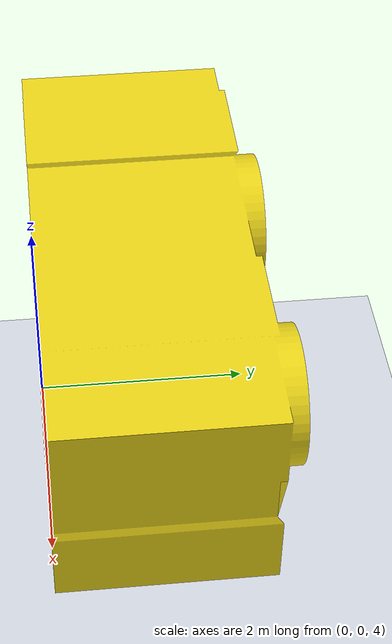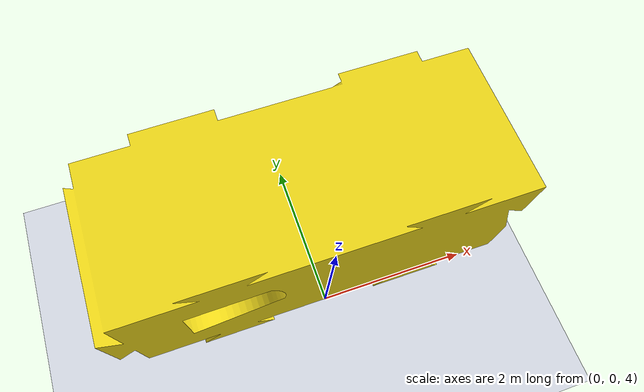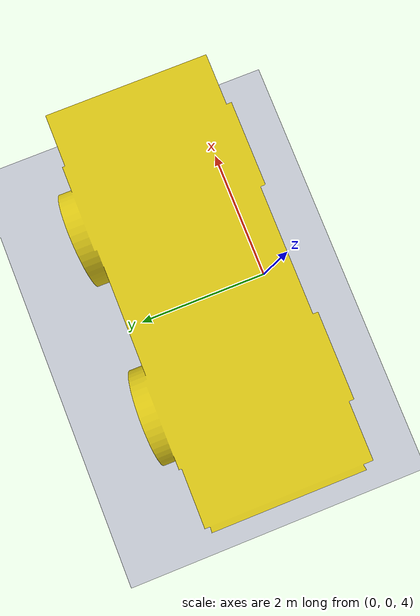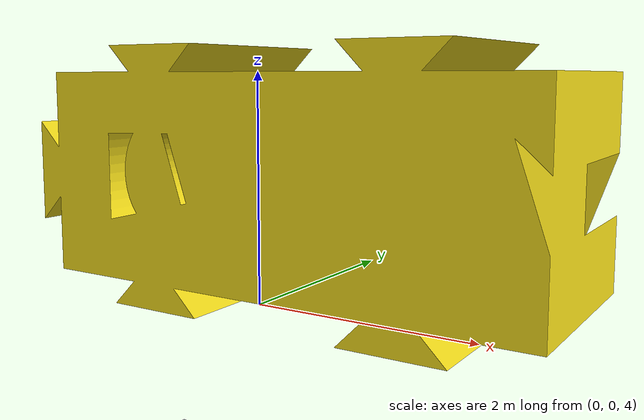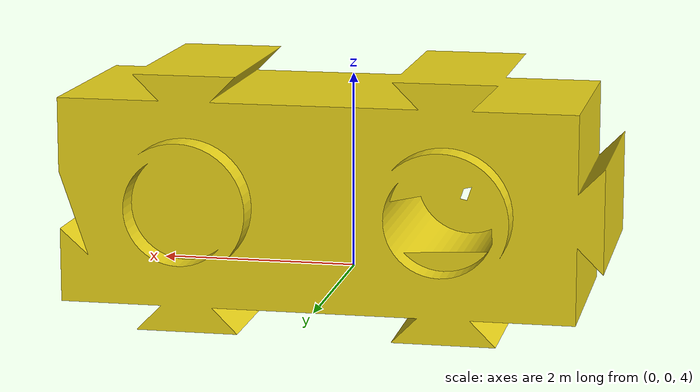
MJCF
<mujoco model="yellow_plaex_long_preview">
  <compiler angle="degree" coordinate="local" autolimits="true"/>
  <option timestep="0.005" gravity="0 0 0"/>
  <visual>
    <headlight ambient="0.7 0.7 0.7" diffuse="0.4 0.4 0.4" specular="0.1 0.1 0.1"/>
    <rgba haze="0.97 0.98 1.0 1"/>
  </visual>
  <statistic center="0.000000 1.000000 5.000000" extent="15"/>
  <asset>
    <mesh name="yellow_plaex_long_mesh" file="BlenderFiles/yellowPLAEXLong.obj"/>
  </asset>
  <worldbody>
    <light name="key" pos="0 -8 10" dir="0 0 -1" diffuse="0.9 0.9 0.9"/>
    <camera name="preview" pos="0 -12 6" xyaxes="1 0 0 0 0.6 0.8"/>
    <geom name="floor" type="box" pos="0 0 -0.1" size="8 8 0.1" rgba="0.85 0.87 0.91 1"/>
    <body name="PreviewYellowPlaexLongBrick" pos="0.000000 1.000000 5.000000">
      <geom name="yellow_plaex_long_geom" type="mesh" mesh="yellow_plaex_long_mesh" rgba="0.950000 0.860000 0.100000 1.000000"/>
    </body>
  </worldbody>
</mujoco>
